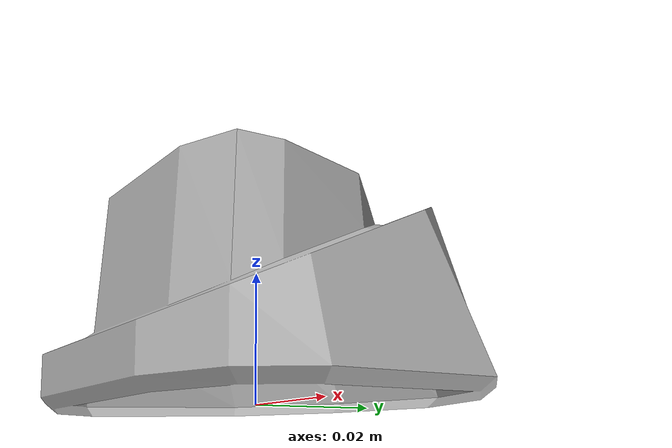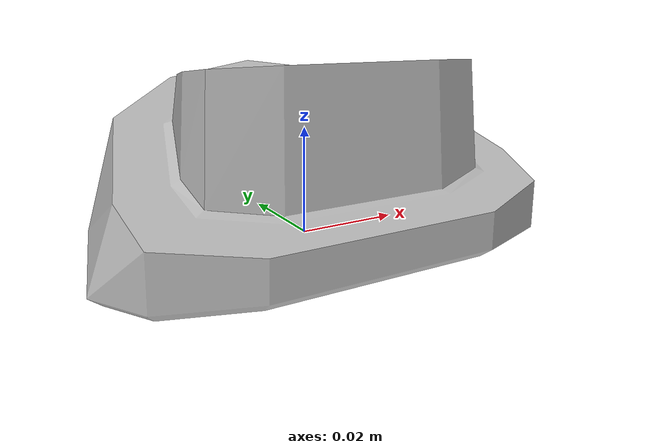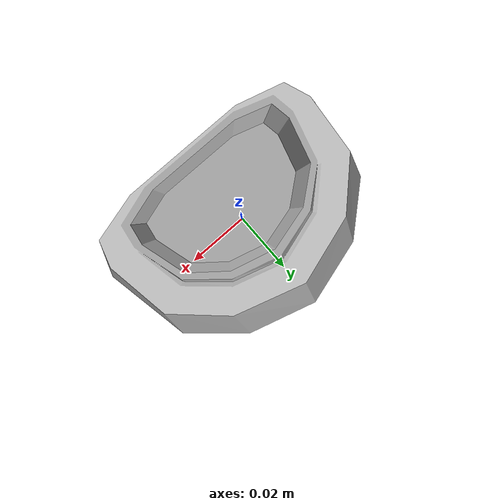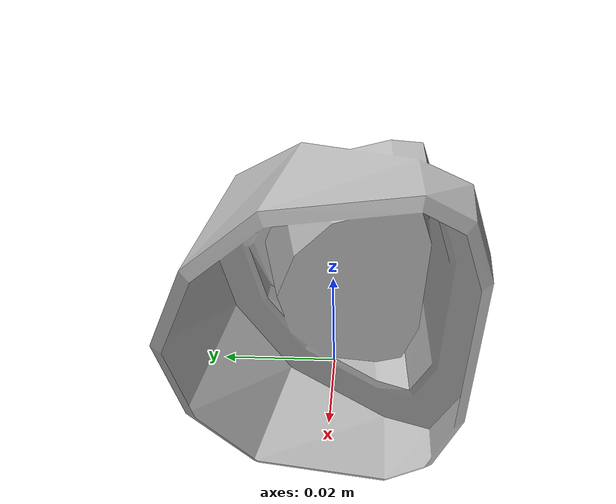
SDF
<?xml version='1.0'?>
<sdf version="1.4">
	<model name="phone_base">
		<static>1</static>
		<link name="link">
			<visual name="mesh">
				<geometry>
					<mesh>
						<uri>model://meshes/phone_base.dae</uri>
					</mesh>
				</geometry>
			</visual>
			<collision name="collider">
				<pose>0 0 0.0185 0 0 0</pose>
				<geometry>
					<box>
						<size>0.084 0.061 0.037</size>
					</box>
				</geometry>
			</collision>
		</link>
	</model>
</sdf>
